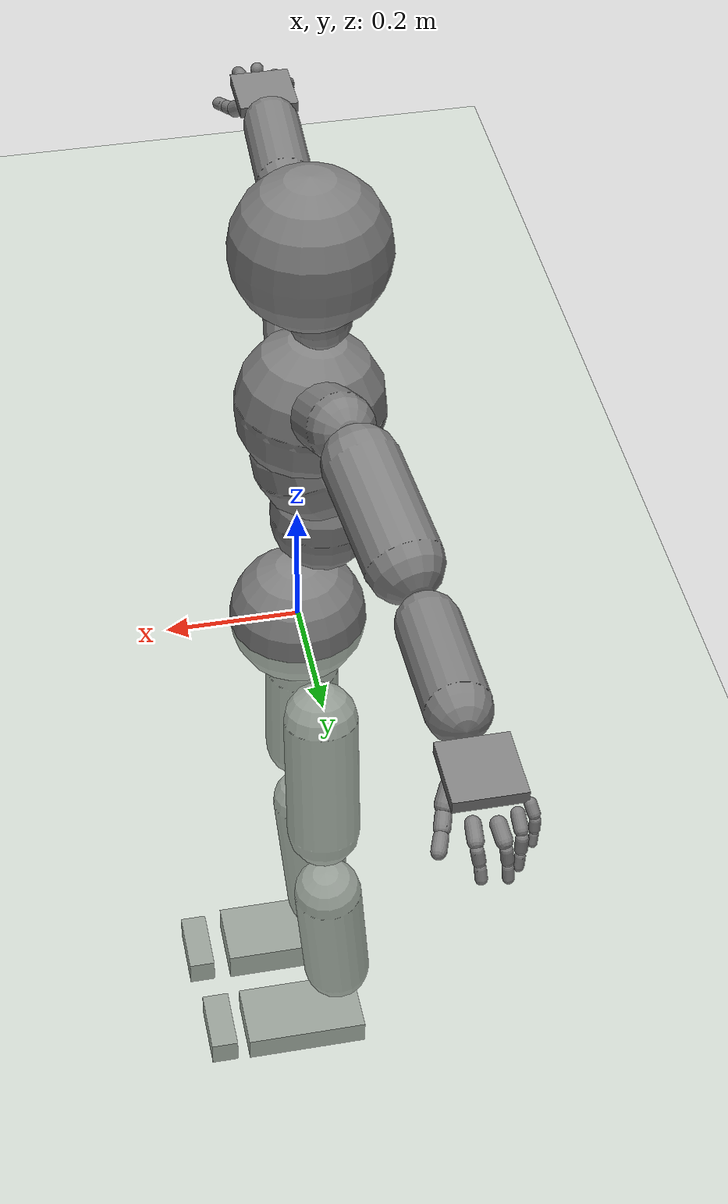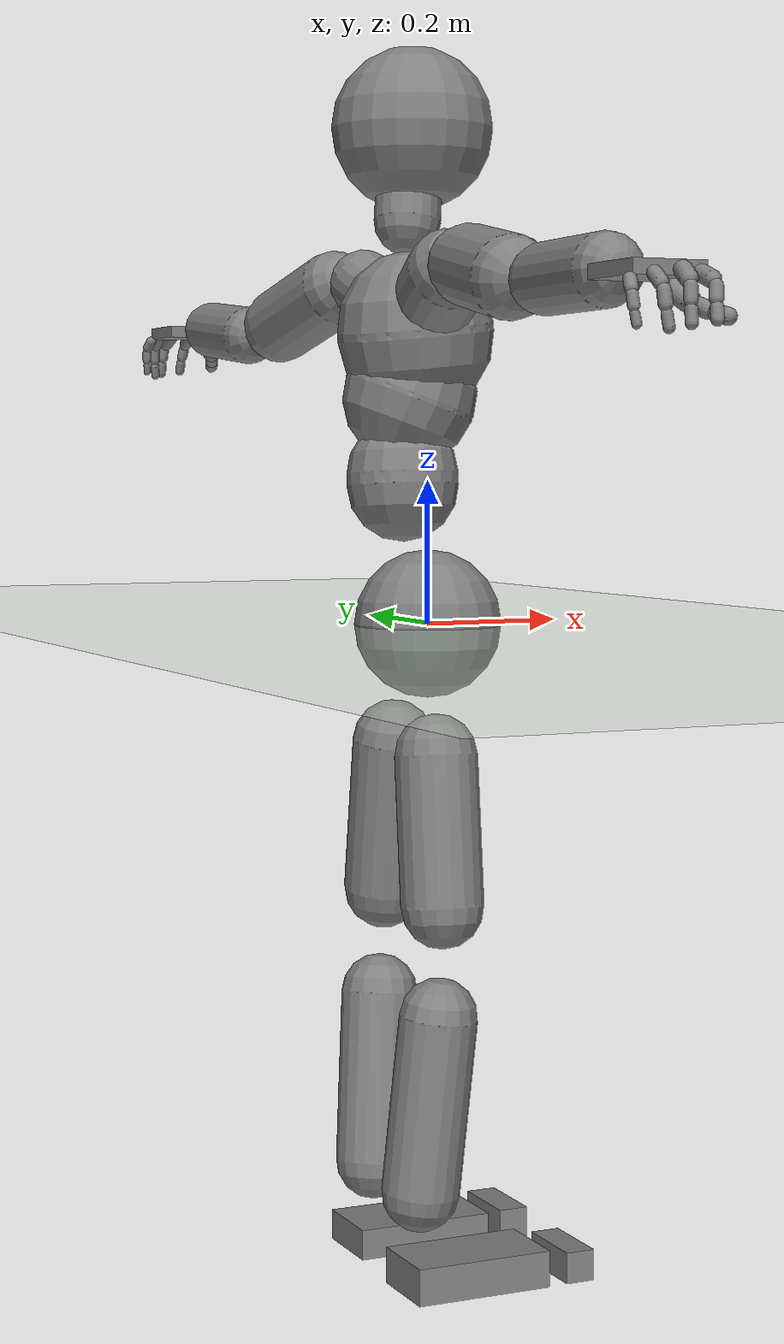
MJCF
<mujoco model="humanoid">
  <compiler coordinate="local" />
  <statistic extent="2" center="0 0 1" />
  <option timestep="0.00555" />
  <default>
    <motor ctrlrange="-1 1" ctrllimited="true" />
    <geom type="capsule" condim="1" friction="1.0 0.05 0.05" solimp=".9 .99 .003" solref=".015 1" />
    <joint type="hinge" damping="0.1" stiffness="5" armature=".007" limited="true" solimplimit="0 .99 .01" />
    <site size=".04" group="3" />
    <default class="force-torque">
      <site type="box" size=".01 .01 .02" rgba="1 0 0 1" />
    </default>
    <default class="touch">
      <site type="capsule" rgba="0 0 1 .3" />
    </default>
  </default>
  <asset>
    <texture type="skybox" builtin="gradient" rgb1=".4 .5 .6" rgb2="0 0 0" width="100" height="100" />
    <texture builtin="flat" height="1278" mark="cross" markrgb="1 1 1" name="texgeom" random="0.01" rgb1="0.8 0.6 0.4" rgb2="0.8 0.6 0.4" type="cube" width="127" />
    <texture builtin="checker" height="100" name="texplane" rgb1="0 0 0" rgb2="0.8 0.8 0.8" type="2d" width="100" />
    <material name="MatPlane" reflectance="0.5" shininess="1" specular="1" texrepeat="60 60" texture="texplane" />
    <material name="geom" texture="texgeom" texuniform="true" />
  </asset>
  <worldbody>
    <light cutoff="100" diffuse="1 1 1" dir="-0 0 -1.3" directional="true" exponent="1" pos="0 0 1.3" specular=".1 .1 .1" />
    <geom conaffinity="1" condim="3" name="floor" pos="0 0 0" rgba="0.8 0.9 0.8 1" size="100 100 .2" type="plane" material="MatPlane" />
    <body name="Pelvis" pos="0 0 0">
      <inertial pos="0.000000 0.000000 0.000000" quat="1.00000000 0.00000000 0.00000000 0.00000000" mass="4.698241" diaginertia="0.020287397 0.020287397 0.020287397" /><freejoint name="Pelvis" />
      <geom type="sphere" contype="1" conaffinity="1" density="1000" size="0.1039" pos="0.0000 0.0000 0.0000" name="Pelvis" />
      <body name="L_Hip" pos="-0.0236 0.0529 -0.0971">
        <inertial pos="0.001800 0.030650 -0.182250" quat="0.98189647 0.08266190 0.00927497 -0.17017730" mass="6.451034" diaginertia="0.054423217 0.054423217 0.010289550" /><joint name="L_Hip_x" type="hinge" pos="0 0 0" axis="1 0 0" stiffness="800" damping="80" armature="0.02" range="-180.0000 180.0000" />
        <joint name="L_Hip_y" type="hinge" pos="0 0 0" axis="0 1 0" stiffness="800" damping="80" armature="0.02" range="-180.0000 180.0000" />
        <joint name="L_Hip_z" type="hinge" pos="0 0 0" axis="0 0 1" stiffness="800" damping="80" armature="0.02" range="-180.0000 180.0000" />
        <geom type="capsule" contype="1" conaffinity="1" density="2040.816327" fromto="0.0007 0.0123 -0.0729 0.0029 0.0490 -0.2916" size="0.058" />
        <body name="L_Knee" pos="0.0037 0.0613 -0.3645">
          <inertial pos="-0.018500 -0.025050 -0.200000" quat="0.99664377 -0.06087389 0.04751182 0.02716985" mass="3.710167" diaginertia="0.034208075 0.034208075 0.005351362" /><joint name="L_Knee_x" type="hinge" pos="0 0 0" axis="1 0 0" stiffness="800" damping="80" armature="0.02" range="-180.0000 180.0000" />
          <joint name="L_Knee_y" type="hinge" pos="0 0 0" axis="0 1 0" stiffness="800" damping="80" armature="0.02" range="-180.0000 180.0000" />
          <joint name="L_Knee_z" type="hinge" pos="0 0 0" axis="0 0 1" stiffness="800" damping="80" armature="0.02" range="-180.0000 180.0000" />
          <geom type="capsule" contype="1" conaffinity="1" density="1234.567901" fromto="-0.0074 -0.0100 -0.0800 -0.0296 -0.0401 -0.3200" size="0.055" />
          <body name="L_Ankle" pos="-0.037 -0.0501 -0.4">
            <inertial pos="0.070900 0.022800 -0.029800" quat="1.00000000 0.00000000 0.00000000 0.00000000" mass="0.957671" diaginertia="0.001121625 0.003366764 0.004190515" /><joint name="L_Ankle_x" type="hinge" pos="0 0 0" axis="1 0 0" stiffness="800" damping="80" armature="0.02" range="-180.0000 180.0000" />
            <joint name="L_Ankle_y" type="hinge" pos="0 0 0" axis="0 1 0" stiffness="800" damping="80" armature="0.02" range="-180.0000 180.0000" />
            <joint name="L_Ankle_z" type="hinge" pos="0 0 0" axis="0 0 1" stiffness="800" damping="80" armature="0.02" range="-180.0000 180.0000" />
            <geom type="box" contype="1" conaffinity="1" density="1000" pos="0.0709 0.0228 -0.0298" size="0.1004 0.0552 0.0216" quat="1.0000 0.0000 0.0000 0.0000" />
            <body name="L_Toe" pos="0.1418 0.0456 -0.0596">
              <inertial pos="0.071900 -0.022800 0.030400" quat="1.00000000 0.00000000 0.00000000 0.00000000" mass="0.206927" diaginertia="0.000228906 0.000067073 0.000228602" /><joint name="L_Toe_x" type="hinge" pos="0 0 0" axis="1 0 0" stiffness="500" damping="50" armature="0.02" range="-180.0000 180.0000" />
              <joint name="L_Toe_y" type="hinge" pos="0 0 0" axis="0 1 0" stiffness="500" damping="50" armature="0.02" range="-180.0000 180.0000" />
              <joint name="L_Toe_z" type="hinge" pos="0 0 0" axis="0 0 1" stiffness="500" damping="50" armature="0.02" range="-180.0000 180.0000" />
              <geom type="box" contype="1" conaffinity="1" density="1000" pos="0.0719 -0.0228 0.0304" size="0.022 0.0532 0.0221" quat="1.0000 0.0000 0.0000 0.0000" />
            </body>
          </body>
        </body>
      </body>
      <body name="R_Hip" pos="-0.0168 -0.0552 -0.1087">
        <inertial pos="-0.002200 -0.022400 -0.173700" quat="0.99793690 -0.06390365 0.00617405 -0.00039536" mass="6.151659" diaginertia="0.048267573 0.048267573 0.009724372" /><joint name="R_Hip_x" type="hinge" pos="0 0 0" axis="1 0 0" stiffness="800" damping="80" armature="0.02" range="-180.0000 180.0000" />
        <joint name="R_Hip_y" type="hinge" pos="0 0 0" axis="0 1 0" stiffness="800" damping="80" armature="0.02" range="-180.0000 180.0000" />
        <joint name="R_Hip_z" type="hinge" pos="0 0 0" axis="0 0 1" stiffness="800" damping="80" armature="0.02" range="-180.0000 180.0000" />
        <geom type="capsule" contype="1" conaffinity="1" density="2040.816327" fromto="-0.0009 -0.0090 -0.0695 -0.0035 -0.0358 -0.2779" size="0.0578" />
        <body name="R_Knee" pos="-0.0043 -0.0448 -0.3474">
          <inertial pos="-0.017600 0.010350 -0.206400" quat="0.99653595 0.02223966 0.04424026 -0.06681539" mass="3.718719" diaginertia="0.035307856 0.035307856 0.005292110" /><joint name="R_Knee_x" type="hinge" pos="0 0 0" axis="1 0 0" stiffness="800" damping="80" armature="0.02" range="-180.0000 180.0000" />
          <joint name="R_Knee_y" type="hinge" pos="0 0 0" axis="0 1 0" stiffness="800" damping="80" armature="0.02" range="-180.0000 180.0000" />
          <joint name="R_Knee_z" type="hinge" pos="0 0 0" axis="0 0 1" stiffness="800" damping="80" armature="0.02" range="-180.0000 180.0000" />
          <geom type="capsule" contype="1" conaffinity="1" density="1234.567901" fromto="-0.0070 0.0041 -0.0826 -0.0282 0.0166 -0.3302" size="0.0546" />
          <body name="R_Ankle" pos="-0.0352 0.0207 -0.4128">
            <inertial pos="0.074300 -0.017700 -0.029300" quat="1.00000000 0.00000000 0.00000000 0.00000000" mass="1.143885" diaginertia="0.001415627 0.004097321 0.005005337" /><joint name="R_Ankle_x" type="hinge" pos="0 0 0" axis="1 0 0" stiffness="800" damping="80" armature="0.02" range="-180.0000 180.0000" />
            <joint name="R_Ankle_y" type="hinge" pos="0 0 0" axis="0 1 0" stiffness="800" damping="80" armature="0.02" range="-180.0000 180.0000" />
            <joint name="R_Ankle_z" type="hinge" pos="0 0 0" axis="0 0 1" stiffness="800" damping="80" armature="0.02" range="-180.0000 180.0000" />
            <geom type="box" contype="1" conaffinity="1" density="1000" pos="0.0743 -0.0177 -0.0293" size="0.1004 0.0552 0.0258" quat="1.0000 0.0000 0.0000 0.0000" />
            <body name="R_Toe" pos="0.1487 -0.0354 -0.0587">
              <inertial pos="0.075300 0.017700 0.025600" quat="1.00000000 0.00000000 0.00000000 0.00000000" mass="0.201283" diaginertia="0.000222663 0.000063496 0.000220620" /><joint name="R_Toe_x" type="hinge" pos="0 0 0" axis="1 0 0" stiffness="500" damping="50" armature="0.02" range="-180.0000 180.0000" />
              <joint name="R_Toe_y" type="hinge" pos="0 0 0" axis="0 1 0" stiffness="500" damping="50" armature="0.02" range="-180.0000 180.0000" />
              <joint name="R_Toe_z" type="hinge" pos="0 0 0" axis="0 0 1" stiffness="500" damping="50" armature="0.02" range="-180.0000 180.0000" />
              <geom type="box" contype="1" conaffinity="1" density="1000" pos="0.0753 0.0177 0.0256" size="0.0214 0.0532 0.0221" quat="1.0000 0.0000 0.0000 0.0000" />
            </body>
          </body>
        </body>
      </body>
      <body name="Torso" pos="-0.0378 -0.0024 0.1175">
        <inertial pos="0.000450 0.006050 0.083900" quat="0.99925019 -0.03860376 0.00296507 -0.00011455" mass="2.841246" diaginertia="0.007922013 0.007922013 0.007137412" /><joint name="Torso_x" type="hinge" pos="0 0 0" axis="1 0 0" stiffness="1000" damping="100" armature="0.02" range="-180.0000 180.0000" />
        <joint name="Torso_y" type="hinge" pos="0 0 0" axis="0 1 0" stiffness="1000" damping="100" armature="0.02" range="-180.0000 180.0000" />
        <joint name="Torso_z" type="hinge" pos="0 0 0" axis="0 0 1" stiffness="1000" damping="100" armature="0.02" range="-180.0000 180.0000" />
        <geom type="capsule" contype="1" conaffinity="1" density="1234.567901" fromto="0.0004 0.0054 0.0755 0.0005 0.0067 0.0923" size="0.0779" />
        <body name="Spine" pos="0.0009 0.0121 0.1679">
          <inertial pos="0.011100 -0.004950 0.031650" quat="0.97951582 0.05220569 0.17165153 -0.09142796" mass="4.371596" diaginertia="0.015820141 0.015820141 0.015285988" /><joint name="Spine_x" type="hinge" pos="0 0 0" axis="1 0 0" stiffness="1000" damping="100" armature="0.02" range="-180.0000 180.0000" />
          <joint name="Spine_y" type="hinge" pos="0 0 0" axis="0 1 0" stiffness="1000" damping="100" armature="0.02" range="-180.0000 180.0000" />
          <joint name="Spine_z" type="hinge" pos="0 0 0" axis="0 0 1" stiffness="1000" damping="100" armature="0.02" range="-180.0000 180.0000" />
          <geom type="capsule" contype="1" conaffinity="1" density="1234.567901" fromto="0.0100 -0.0045 0.0285 0.0122 -0.0054 0.0348" size="0.0929" />
          <body name="Chest" pos="0.0223 -0.0099 0.0632">
            <inertial pos="-0.006000 -0.002200 0.056000" quat="0.99554623 0.01367926 -0.05451118 0.07569094" mass="7.139163" diaginertia="0.036023672 0.036023672 0.034287671" /><joint name="Chest_x" type="hinge" pos="0 0 0" axis="1 0 0" stiffness="1000" damping="100" armature="0.02" range="-180.0000 180.0000" />
            <joint name="Chest_y" type="hinge" pos="0 0 0" axis="0 1 0" stiffness="1000" damping="100" armature="0.02" range="-180.0000 180.0000" />
            <joint name="Chest_z" type="hinge" pos="0 0 0" axis="0 0 1" stiffness="1000" damping="100" armature="0.02" range="-180.0000 180.0000" />
            <geom type="capsule" contype="1" conaffinity="1" density="1234.567901" fromto="-0.0054 -0.0020 0.0504 -0.0066 -0.0024 0.0616" size="0.1086" />
            <body name="Neck" pos="-0.024 -0.0093 0.1747">
              <inertial pos="0.010200 0.011900 0.080550" quat="0.99542191 -0.07269701 0.06188650 -0.00451965" mass="1.073527" diaginertia="0.002945723 0.002945723 0.001057524" /><joint name="Neck_x" type="hinge" pos="0 0 0" axis="1 0 0" stiffness="500" damping="50" armature="0.02" range="-180.0000 180.0000" />
              <joint name="Neck_y" type="hinge" pos="0 0 0" axis="0 1 0" stiffness="500" damping="50" armature="0.02" range="-180.0000 180.0000" />
              <joint name="Neck_z" type="hinge" pos="0 0 0" axis="0 0 1" stiffness="500" damping="50" armature="0.02" range="-180.0000 180.0000" />
              <geom type="capsule" contype="1" conaffinity="1" density="1000" fromto="0.0041 0.0048 0.0322 0.0163 0.0190 0.1289" size="0.0462" />
              <body name="Head" pos="0.0204 0.0238 0.1612">
                <inertial pos="0.000000 0.000000 0.000000" quat="1.00000000 0.00000000 0.00000000 0.00000000" mass="5.948227" diaginertia="0.030059390 0.030059390 0.030059390" /><joint name="Head_x" type="hinge" pos="0 0 0" axis="1 0 0" stiffness="500" damping="50" armature="0.02" range="-180.0000 180.0000" />
                <joint name="Head_y" type="hinge" pos="0 0 0" axis="0 1 0" stiffness="500" damping="50" armature="0.02" range="-180.0000 180.0000" />
                <joint name="Head_z" type="hinge" pos="0 0 0" axis="0 0 1" stiffness="500" damping="50" armature="0.02" range="-180.0000 180.0000" />
                <geom type="sphere" contype="1" conaffinity="1" density="1000" size="0.1124" pos="0.0000 0.0000 0.0000" name="Head" />
              </body>
            </body>
            <body name="L_Thorax" pos="-0.0042 0.0393 0.08">
              <inertial pos="-0.009950 0.064550 0.032150" quat="0.97119904 0.22539761 0.01968519 0.07470495" mass="1.140311" diaginertia="0.002975051 0.001241864 0.002975051" /><joint name="L_Thorax_x" type="hinge" pos="0 0 0" axis="1 0 0" stiffness="500" damping="50" armature="0.02" range="-180.0000 180.0000" />
              <joint name="L_Thorax_y" type="hinge" pos="0 0 0" axis="0 1 0" stiffness="500" damping="50" armature="0.02" range="-180.0000 180.0000" />
              <joint name="L_Thorax_z" type="hinge" pos="0 0 0" axis="0 0 1" stiffness="500" damping="50" armature="0.02" range="-180.0000 180.0000" />
              <geom type="capsule" contype="1" conaffinity="1" density="1000" fromto="-0.0040 0.0258 0.0129 -0.0159 0.1033 0.0514" size="0.0488" />
              <body name="L_Shoulder" pos="-0.0199 0.1291 0.0643">
                <inertial pos="-0.021950 0.123550 -0.039050" quat="0.94409521 -0.12056346 -0.28060653 0.12413166" mass="2.196032" diaginertia="0.011688608 0.003110683 0.011688608" /><joint name="L_Shoulder_x" type="hinge" pos="0 0 0" axis="1 0 0" stiffness="500" damping="50" armature="0.02" range="-180.0000 180.0000" />
                <joint name="L_Shoulder_y" type="hinge" pos="0 0 0" axis="0 1 0" stiffness="500" damping="50" armature="0.02" range="-180.0000 180.0000" />
                <joint name="L_Shoulder_z" type="hinge" pos="0 0 0" axis="0 0 1" stiffness="500" damping="50" armature="0.02" range="-180.0000 180.0000" />
                <geom type="capsule" contype="1" conaffinity="1" density="1000" fromto="-0.0088 0.0494 -0.0156 -0.0351 0.1977 -0.0625" size="0.055" />
                <body name="L_Elbow" pos="-0.0438 0.2472 -0.0781">
                  <inertial pos="0.000000 0.137500 0.013450" quat="0.99881760 0.04861475 0.00000000 0.00000000" mass="1.344183" diaginertia="0.006371501 0.001216729 0.006371501" /><joint name="L_Elbow_x" type="hinge" pos="0 0 0" axis="1 0 0" stiffness="500" damping="50" armature="0.02" range="-180.0000 180.0000" />
                  <joint name="L_Elbow_y" type="hinge" pos="0 0 0" axis="0 1 0" stiffness="500" damping="50" armature="0.02" range="-180.0000 180.0000" />
                  <joint name="L_Elbow_z" type="hinge" pos="0 0 0" axis="0 0 1" stiffness="500" damping="50" armature="0.02" range="-180.0000 180.0000" />
                  <geom type="capsule" contype="1" conaffinity="1" density="1000" fromto="-0.0000 0.0550 0.0054 -0.0000 0.2200 0.0215" size="0.0437" />
                  <body name="L_Wrist" pos="0 0.275 0.0269">
                    <inertial pos="-0.003100 0.048300 -0.005900" quat="1.00000000 0.00000000 0.00000000 0.00000000" mass="0.160616" diaginertia="0.000133124 0.000122319 0.000247338" /><joint name="L_Wrist_x" type="hinge" pos="0 0 0" axis="1 0 0" stiffness="300" damping="30" armature="0.02" range="-180.0000 180.0000" />
                    <joint name="L_Wrist_y" type="hinge" pos="0 0 0" axis="0 1 0" stiffness="300" damping="30" armature="0.02" range="-180.0000 180.0000" />
                    <joint name="L_Wrist_z" type="hinge" pos="0 0 0" axis="0 0 1" stiffness="300" damping="30" armature="0.02" range="-180.0000 180.0000" />
                    <geom type="box" contype="1" conaffinity="1" density="1000" pos="-0.0031 0.0483 -0.0059" size="0.047 0.0491 0.0087" quat="1.0000 0.0000 0.0000 0.0000" />
                    <body name="L_Index1" pos="0.0235 0.1137 -0.0089">
                      <inertial pos="0.000950 0.016600 -0.006450" quat="0.98118998 -0.18374714 -0.05714392 -0.01541998" mass="0.011729" diaginertia="0.000001565 0.000000574 0.000001565" /><joint name="L_Index1_x" type="hinge" pos="0 0 0" axis="1 0 0" stiffness="100" damping="10" armature="0.02" range="-180.0000 180.0000" />
                      <joint name="L_Index1_y" type="hinge" pos="0 0 0" axis="0 1 0" stiffness="100" damping="10" armature="0.02" range="-180.0000 180.0000" />
                      <joint name="L_Index1_z" type="hinge" pos="0 0 0" axis="0 0 1" stiffness="100" damping="10" armature="0.02" range="-180.0000 180.0000" />
                      <geom type="capsule" contype="1" conaffinity="1" density="1000" fromto="0.0004 0.0066 -0.0026 0.0015 0.0266 -0.0103" size="0.0103" />
                      <body name="L_Index2" pos="0.0019 0.0332 -0.0129">
                        <inertial pos="-0.001600 0.003500 -0.011950" quat="0.98721401 0.13930504 0.07155355 -0.02971022" mass="0.005486" diaginertia="0.000000413 0.000000413 0.000000169" /><joint name="L_Index2_x" type="hinge" pos="0 0 0" axis="1 0 0" stiffness="100" damping="10" armature="0.02" range="-180.0000 180.0000" />
                        <joint name="L_Index2_y" type="hinge" pos="0 0 0" axis="0 1 0" stiffness="100" damping="10" armature="0.02" range="-180.0000 180.0000" />
                        <joint name="L_Index2_z" type="hinge" pos="0 0 0" axis="0 0 1" stiffness="100" damping="10" armature="0.02" range="-180.0000 180.0000" />
                        <geom type="capsule" contype="1" conaffinity="1" density="1000" fromto="-0.0006 0.0014 -0.0048 -0.0026 0.0056 -0.0191" size="0.0082" />
                        <body name="L_Index3" pos="-0.0032 0.007 -0.0238">
                          <inertial pos="-0.000600 0.004500 -0.010950" quat="0.98056152 0.19417535 0.02765921 0.00547720" mass="0.004275" diaginertia="0.000000277 0.000000277 0.000000110" /><joint name="L_Index3_x" type="hinge" pos="0 0 0" axis="1 0 0" stiffness="100" damping="10" armature="0.02" range="-180.0000 180.0000" />
                          <joint name="L_Index3_y" type="hinge" pos="0 0 0" axis="0 1 0" stiffness="100" damping="10" armature="0.02" range="-180.0000 180.0000" />
                          <joint name="L_Index3_z" type="hinge" pos="0 0 0" axis="0 0 1" stiffness="100" damping="10" armature="0.02" range="-180.0000 180.0000" />
                          <geom type="capsule" contype="1" conaffinity="1" density="1000" fromto="-0.0002 0.0018 -0.0044 -0.0010 0.0072 -0.0175" size="0.0075" />
                        </body>
                      </body>
                    </body>
                    <body name="L_Middle1" pos="-0.0035 0.1224 -0.0057">
                      <inertial pos="-0.002650 0.014500 -0.008550" quat="0.95803293 -0.25358560 -0.08642840 0.10196757" mass="0.012210" diaginertia="0.000001606 0.000000630 0.000001606" /><joint name="L_Middle1_x" type="hinge" pos="0 0 0" axis="1 0 0" stiffness="100" damping="10" armature="0.02" range="-180.0000 180.0000" />
                      <joint name="L_Middle1_y" type="hinge" pos="0 0 0" axis="0 1 0" stiffness="100" damping="10" armature="0.02" range="-180.0000 180.0000" />
                      <joint name="L_Middle1_z" type="hinge" pos="0 0 0" axis="0 0 1" stiffness="100" damping="10" armature="0.02" range="-180.0000 180.0000" />
                      <geom type="capsule" contype="1" conaffinity="1" density="1000" fromto="-0.0011 0.0058 -0.0034 -0.0042 0.0232 -0.0137" size="0.0106" />
                      <body name="L_Middle2" pos="-0.0053 0.029 -0.0171">
                        <inertial pos="-0.001100 0.002500 -0.012950" quat="0.98948151 0.09024560 0.05370825 -0.09948613" mass="0.005331" diaginertia="0.000000409 0.000000409 0.000000157" /><joint name="L_Middle2_x" type="hinge" pos="0 0 0" axis="1 0 0" stiffness="100" damping="10" armature="0.02" range="-180.0000 180.0000" />
                        <joint name="L_Middle2_y" type="hinge" pos="0 0 0" axis="0 1 0" stiffness="100" damping="10" armature="0.02" range="-180.0000 180.0000" />
                        <joint name="L_Middle2_z" type="hinge" pos="0 0 0" axis="0 0 1" stiffness="100" damping="10" armature="0.02" range="-180.0000 180.0000" />
                        <geom type="capsule" contype="1" conaffinity="1" density="1000" fromto="-0.0004 0.0010 -0.0052 -0.0018 0.0040 -0.0207" size="0.008" />
                        <body name="L_Middle3" pos="-0.0022 0.0049 -0.0259">
                          <inertial pos="-0.000100 0.003500 -0.011950" quat="0.98978901 0.14231837 0.00724790 -0.00326663" mass="0.004125" diaginertia="0.000000271 0.000000271 0.000000101" /><joint name="L_Middle3_x" type="hinge" pos="0 0 0" axis="1 0 0" stiffness="100" damping="10" armature="0.02" range="-180.0000 180.0000" />
                          <joint name="L_Middle3_y" type="hinge" pos="0 0 0" axis="0 1 0" stiffness="100" damping="10" armature="0.02" range="-180.0000 180.0000" />
                          <joint name="L_Middle3_z" type="hinge" pos="0 0 0" axis="0 0 1" stiffness="100" damping="10" armature="0.02" range="-180.0000 180.0000" />
                          <geom type="capsule" contype="1" conaffinity="1" density="1000" fromto="-0.0000 0.0014 -0.0048 -0.0002 0.0056 -0.0191" size="0.0073" />
                        </body>
                      </body>
                    </body>
                    <body name="L_Pinky1" pos="-0.0504 0.0936 -0.0148">
                      <inertial pos="-0.002450 0.006800 -0.008350" quat="0.90670210 0.28784982 0.19561942 -0.23825791" mass="0.004679" diaginertia="0.000000304 0.000000304 0.000000133" /><joint name="L_Pinky1_x" type="hinge" pos="0 0 0" axis="1 0 0" stiffness="100" damping="10" armature="0.02" range="-180.0000 180.0000" />
                      <joint name="L_Pinky1_y" type="hinge" pos="0 0 0" axis="0 1 0" stiffness="100" damping="10" armature="0.02" range="-180.0000 180.0000" />
                      <joint name="L_Pinky1_z" type="hinge" pos="0 0 0" axis="0 0 1" stiffness="100" damping="10" armature="0.02" range="-180.0000 180.0000" />
                      <geom type="capsule" contype="1" conaffinity="1" density="1000" fromto="-0.0010 0.0027 -0.0033 -0.0039 0.0109 -0.0134" size="0.0079" />
                      <body name="L_Pinky2" pos="-0.0049 0.0136 -0.0167">
                        <inertial pos="0.000500 0.002000 -0.010450" quat="0.99505601 0.09416312 -0.02543099 0.01871124" mass="0.003398" diaginertia="0.000000185 0.000000185 0.000000076" /><joint name="L_Pinky2_x" type="hinge" pos="0 0 0" axis="1 0 0" stiffness="100" damping="10" armature="0.02" range="-180.0000 180.0000" />
                        <joint name="L_Pinky2_y" type="hinge" pos="0 0 0" axis="0 1 0" stiffness="100" damping="10" armature="0.02" range="-180.0000 180.0000" />
                        <joint name="L_Pinky2_z" type="hinge" pos="0 0 0" axis="0 0 1" stiffness="100" damping="10" armature="0.02" range="-180.0000 180.0000" />
                        <geom type="capsule" contype="1" conaffinity="1" density="1000" fromto="0.0002 0.0008 -0.0042 0.0008 0.0032 -0.0167" size="0.007" />
                        <body name="L_Pinky3" pos="0.001 0.0039 -0.0209">
                          <inertial pos="0.001500 0.003000 -0.009450" quat="0.98533228 0.15316313 -0.07434908 -0.01155705" mass="0.001917" diaginertia="0.000000078 0.000000078 0.000000028" /><joint name="L_Pinky3_x" type="hinge" pos="0 0 0" axis="1 0 0" stiffness="100" damping="10" armature="0.02" range="-180.0000 180.0000" />
                          <joint name="L_Pinky3_y" type="hinge" pos="0 0 0" axis="0 1 0" stiffness="100" damping="10" armature="0.02" range="-180.0000 180.0000" />
                          <joint name="L_Pinky3_z" type="hinge" pos="0 0 0" axis="0 0 1" stiffness="100" damping="10" armature="0.02" range="-180.0000 180.0000" />
                          <geom type="capsule" contype="1" conaffinity="1" density="1000" fromto="0.0006 0.0012 -0.0038 0.0024 0.0048 -0.0151" size="0.0056" />
                        </body>
                      </body>
                    </body>
                    <body name="L_Ring1" pos="-0.0311 0.1088 -0.0086">
                      <inertial pos="-0.000750 0.012950 -0.009250" quat="0.95027268 -0.30354576 -0.05515106 0.04242839" mass="0.007702" diaginertia="0.000000789 0.000000282 0.000000789" /><joint name="L_Ring1_x" type="hinge" pos="0 0 0" axis="1 0 0" stiffness="100" damping="10" armature="0.02" range="-180.0000 180.0000" />
                      <joint name="L_Ring1_y" type="hinge" pos="0 0 0" axis="0 1 0" stiffness="100" damping="10" armature="0.02" range="-180.0000 180.0000" />
                      <joint name="L_Ring1_z" type="hinge" pos="0 0 0" axis="0 0 1" stiffness="100" damping="10" armature="0.02" range="-180.0000 180.0000" />
                      <geom type="capsule" contype="1" conaffinity="1" density="1000" fromto="-0.0003 0.0052 -0.0037 -0.0012 0.0207 -0.0148" size="0.0089" />
                      <body name="L_Ring2" pos="-0.0015 0.0259 -0.0184">
                        <inertial pos="0.000800 0.002000 -0.012950" quat="0.99654641 0.07669501 -0.03173588 -0.00244242" mass="0.005466" diaginertia="0.000000422 0.000000422 0.000000165" /><joint name="L_Ring2_x" type="hinge" pos="0 0 0" axis="1 0 0" stiffness="100" damping="10" armature="0.02" range="-180.0000 180.0000" />
                        <joint name="L_Ring2_y" type="hinge" pos="0 0 0" axis="0 1 0" stiffness="100" damping="10" armature="0.02" range="-180.0000 180.0000" />
                        <joint name="L_Ring2_z" type="hinge" pos="0 0 0" axis="0 0 1" stiffness="100" damping="10" armature="0.02" range="-180.0000 180.0000" />
                        <geom type="capsule" contype="1" conaffinity="1" density="1000" fromto="0.0003 0.0008 -0.0052 0.0013 0.0032 -0.0207" size="0.0081" />
                        <body name="L_Ring3" pos="0.0016 0.004 -0.0259">
                          <inertial pos="0.001800 0.003000 -0.011950" quat="0.98968715 0.12266236 -0.07341997 -0.00909971" mass="0.003362" diaginertia="0.000000202 0.000000202 0.000000070" /><joint name="L_Ring3_x" type="hinge" pos="0 0 0" axis="1 0 0" stiffness="100" damping="10" armature="0.02" range="-180.0000 180.0000" />
                          <joint name="L_Ring3_y" type="hinge" pos="0 0 0" axis="0 1 0" stiffness="100" damping="10" armature="0.02" range="-180.0000 180.0000" />
                          <joint name="L_Ring3_z" type="hinge" pos="0 0 0" axis="0 0 1" stiffness="100" damping="10" armature="0.02" range="-180.0000 180.0000" />
                          <geom type="capsule" contype="1" conaffinity="1" density="1000" fromto="0.0007 0.0012 -0.0048 0.0029 0.0048 -0.0191" size="0.0067" />
                        </body>
                      </body>
                    </body>
                    <body name="L_Thumb1" pos="0.0307 0.0445 -0.0209">
                      <inertial pos="0.007300 0.011950 -0.010200" quat="0.91588921 -0.33760834 -0.07511499 -0.20377756" mass="0.023848" diaginertia="0.000004359 0.000002086 0.000004359" /><joint name="L_Thumb1_x" type="hinge" pos="0 0 0" axis="1 0 0" stiffness="100" damping="10" armature="0.02" range="-180.0000 180.0000" />
                      <joint name="L_Thumb1_y" type="hinge" pos="0 0 0" axis="0 1 0" stiffness="100" damping="10" armature="0.02" range="-180.0000 180.0000" />
                      <joint name="L_Thumb1_z" type="hinge" pos="0 0 0" axis="0 0 1" stiffness="100" damping="10" armature="0.02" range="-180.0000 180.0000" />
                      <geom type="capsule" contype="1" conaffinity="1" density="1000" fromto="0.0029 0.0048 -0.0041 0.0117 0.0191 -0.0163" size="0.0139" />
                      <body name="L_Thumb2" pos="0.0146 0.0239 -0.0203">
                        <inertial pos="0.004250 0.013100 -0.004750" quat="0.97437267 -0.17038288 -0.02529655 -0.14466398" mass="0.011185" diaginertia="0.000001290 0.000000572 0.000001290" /><joint name="L_Thumb2_x" type="hinge" pos="0 0 0" axis="1 0 0" stiffness="100" damping="10" armature="0.02" range="-180.0000 180.0000" />
                        <joint name="L_Thumb2_y" type="hinge" pos="0 0 0" axis="0 1 0" stiffness="100" damping="10" armature="0.02" range="-180.0000 180.0000" />
                        <joint name="L_Thumb2_z" type="hinge" pos="0 0 0" axis="0 0 1" stiffness="100" damping="10" armature="0.02" range="-180.0000 180.0000" />
                        <geom type="capsule" contype="1" conaffinity="1" density="1000" fromto="0.0017 0.0052 -0.0019 0.0068 0.0210 -0.0076" size="0.0106" />
                        <body name="L_Thumb3" pos="0.0085 0.0262 -0.0095">
                          <inertial pos="0.005250 0.014100 -0.003750" quat="0.97700871 -0.12712086 -0.02208332 -0.16972508" mass="0.009579" diaginertia="0.000001065 0.000000422 0.000001065" /><joint name="L_Thumb3_x" type="hinge" pos="0 0 0" axis="1 0 0" stiffness="100" damping="10" armature="0.02" range="-180.0000 180.0000" />
                          <joint name="L_Thumb3_y" type="hinge" pos="0 0 0" axis="0 1 0" stiffness="100" damping="10" armature="0.02" range="-180.0000 180.0000" />
                          <joint name="L_Thumb3_z" type="hinge" pos="0 0 0" axis="0 0 1" stiffness="100" damping="10" armature="0.02" range="-180.0000 180.0000" />
                          <geom type="capsule" contype="1" conaffinity="1" density="1000" fromto="0.0021 0.0056 -0.0015 0.0084 0.0226 -0.0060" size="0.0098" />
                        </body>
                      </body>
                    </body>
                  </body>
                </body>
              </body>
            </body>
            <body name="R_Thorax" pos="-0.008 -0.043 0.081">
              <inertial pos="-0.007500 -0.059950 0.030500" quat="0.97091509 -0.23289832 -0.01295004 -0.05398662" mass="1.660886" diaginertia="0.005016317 0.002504150 0.005016317" /><joint name="R_Thorax_x" type="hinge" pos="0 0 0" axis="1 0 0" stiffness="500" damping="50" armature="0.02" range="-180.0000 180.0000" />
              <joint name="R_Thorax_y" type="hinge" pos="0 0 0" axis="0 1 0" stiffness="500" damping="50" armature="0.02" range="-180.0000 180.0000" />
              <joint name="R_Thorax_z" type="hinge" pos="0 0 0" axis="0 0 1" stiffness="500" damping="50" armature="0.02" range="-180.0000 180.0000" />
              <geom type="capsule" contype="1" conaffinity="1" density="1000" fromto="-0.0030 -0.0240 0.0122 -0.0120 -0.0959 0.0488" size="0.0578" />
              <body name="R_Shoulder" pos="-0.015 -0.1199 0.0609">
                <inertial pos="-0.016250 -0.131950 -0.022550" quat="0.99459098 0.08451919 0.00511228 -0.06015945" mass="2.169221" diaginertia="0.011761713 0.003000226 0.011761713" /><joint name="R_Shoulder_x" type="hinge" pos="0 0 0" axis="1 0 0" stiffness="500" damping="50" armature="0.02" range="-180.0000 180.0000" />
                <joint name="R_Shoulder_y" type="hinge" pos="0 0 0" axis="0 1 0" stiffness="500" damping="50" armature="0.02" range="-180.0000 180.0000" />
                <joint name="R_Shoulder_z" type="hinge" pos="0 0 0" axis="0 0 1" stiffness="500" damping="50" armature="0.02" range="-180.0000 180.0000" />
                <geom type="capsule" contype="1" conaffinity="1" density="1000" fromto="-0.0065 -0.0528 -0.0090 -0.0260 -0.2111 -0.0361" size="0.0543" />
                <body name="R_Elbow" pos="-0.0325 -0.2639 -0.0451">
                  <inertial pos="-0.005600 -0.133300 -0.000050" quat="0.99977445 0.00031243 0.00000664 -0.02123562" mass="1.379377" diaginertia="0.006352572 0.001303307 0.006352572" /><joint name="R_Elbow_x" type="hinge" pos="0 0 0" axis="1 0 0" stiffness="500" damping="50" armature="0.02" range="-180.0000 180.0000" />
                  <joint name="R_Elbow_y" type="hinge" pos="0 0 0" axis="0 1 0" stiffness="500" damping="50" armature="0.02" range="-180.0000 180.0000" />
                  <joint name="R_Elbow_z" type="hinge" pos="0 0 0" axis="0 0 1" stiffness="500" damping="50" armature="0.02" range="-180.0000 180.0000" />
                  <geom type="capsule" contype="1" conaffinity="1" density="1000" fromto="-0.0022 -0.0533 -0.0000 -0.0090 -0.2133 -0.0001" size="0.0447" />
                  <body name="R_Wrist" pos="-0.0112 -0.2667 -0.0001">
                    <inertial pos="-0.003700 -0.048000 -0.007700" quat="1.00000000 0.00000000 0.00000000 0.00000000" mass="0.167094" diaginertia="0.000146357 0.000127350 0.000265081" /><joint name="R_Wrist_x" type="hinge" pos="0 0 0" axis="1 0 0" stiffness="300" damping="30" armature="0.02" range="-180.0000 180.0000" />
                    <joint name="R_Wrist_y" type="hinge" pos="0 0 0" axis="0 1 0" stiffness="300" damping="30" armature="0.02" range="-180.0000 180.0000" />
                    <joint name="R_Wrist_z" type="hinge" pos="0 0 0" axis="0 0 1" stiffness="300" damping="30" armature="0.02" range="-180.0000 180.0000" />
                    <geom type="box" contype="1" conaffinity="1" density="1000" pos="-0.0037 -0.0480 -0.0077" size="0.047 0.0505 0.0088" quat="1.0000 0.0000 0.0000 0.0000" />
                    <body name="R_Index1" pos="0.0223 -0.1131 -0.0126">
                      <inertial pos="0.000950 -0.016600 -0.006450" quat="0.98118998 0.18374714 -0.05714392 0.01541998" mass="0.011729" diaginertia="0.000001565 0.000000574 0.000001565" /><joint name="R_Index1_x" type="hinge" pos="0 0 0" axis="1 0 0" stiffness="100" damping="10" armature="0.02" range="-180.0000 180.0000" />
                      <joint name="R_Index1_y" type="hinge" pos="0 0 0" axis="0 1 0" stiffness="100" damping="10" armature="0.02" range="-180.0000 180.0000" />
                      <joint name="R_Index1_z" type="hinge" pos="0 0 0" axis="0 0 1" stiffness="100" damping="10" armature="0.02" range="-180.0000 180.0000" />
                      <geom type="capsule" contype="1" conaffinity="1" density="1000" fromto="0.0004 -0.0066 -0.0026 0.0015 -0.0266 -0.0103" size="0.0103" />
                      <body name="R_Index2" pos="0.0019 -0.0332 -0.0129">
                        <inertial pos="-0.001600 -0.003500 -0.011950" quat="0.98721401 -0.13930504 0.07155355 0.02971022" mass="0.005486" diaginertia="0.000000413 0.000000413 0.000000169" /><joint name="R_Index2_x" type="hinge" pos="0 0 0" axis="1 0 0" stiffness="100" damping="10" armature="0.02" range="-180.0000 180.0000" />
                        <joint name="R_Index2_y" type="hinge" pos="0 0 0" axis="0 1 0" stiffness="100" damping="10" armature="0.02" range="-180.0000 180.0000" />
                        <joint name="R_Index2_z" type="hinge" pos="0 0 0" axis="0 0 1" stiffness="100" damping="10" armature="0.02" range="-180.0000 180.0000" />
                        <geom type="capsule" contype="1" conaffinity="1" density="1000" fromto="-0.0006 -0.0014 -0.0048 -0.0026 -0.0056 -0.0191" size="0.0082" />
                        <body name="R_Index3" pos="-0.0032 -0.007 -0.0238">
                          <inertial pos="-0.000600 -0.002500 -0.010950" quat="0.99314835 -0.11176362 0.03141826 0.01334723" mass="0.004282" diaginertia="0.000000269 0.000000269 0.000000113" /><joint name="R_Index3_x" type="hinge" pos="0 0 0" axis="1 0 0" stiffness="100" damping="10" armature="0.02" range="-180.0000 180.0000" />
                          <joint name="R_Index3_y" type="hinge" pos="0 0 0" axis="0 1 0" stiffness="100" damping="10" armature="0.02" range="-180.0000 180.0000" />
                          <joint name="R_Index3_z" type="hinge" pos="0 0 0" axis="0 0 1" stiffness="100" damping="10" armature="0.02" range="-180.0000 180.0000" />
                          <geom type="capsule" contype="1" conaffinity="1" density="1000" fromto="-0.0002 -0.0010 -0.0044 -0.0010 -0.0040 -0.0175" size="0.0076" />
                        </body>
                      </body>
                    </body>
                    <body name="R_Middle1" pos="-0.0047 -0.1217 -0.0094">
                      <inertial pos="-0.002650 -0.014500 -0.008550" quat="0.95803293 0.25358560 -0.08642840 -0.10196757" mass="0.012210" diaginertia="0.000001606 0.000000630 0.000001606" /><joint name="R_Middle1_x" type="hinge" pos="0 0 0" axis="1 0 0" stiffness="100" damping="10" armature="0.02" range="-180.0000 180.0000" />
                      <joint name="R_Middle1_y" type="hinge" pos="0 0 0" axis="0 1 0" stiffness="100" damping="10" armature="0.02" range="-180.0000 180.0000" />
                      <joint name="R_Middle1_z" type="hinge" pos="0 0 0" axis="0 0 1" stiffness="100" damping="10" armature="0.02" range="-180.0000 180.0000" />
                      <geom type="capsule" contype="1" conaffinity="1" density="1000" fromto="-0.0011 -0.0058 -0.0034 -0.0042 -0.0232 -0.0137" size="0.0106" />
                      <body name="R_Middle2" pos="-0.0053 -0.029 -0.0171">
                        <inertial pos="-0.001100 -0.002450 -0.012950" quat="0.98927076 -0.08690406 0.05386379 0.10435393" mass="0.005328" diaginertia="0.000000409 0.000000409 0.000000157" /><joint name="R_Middle2_x" type="hinge" pos="0 0 0" axis="1 0 0" stiffness="100" damping="10" armature="0.02" range="-180.0000 180.0000" />
                        <joint name="R_Middle2_y" type="hinge" pos="0 0 0" axis="0 1 0" stiffness="100" damping="10" armature="0.02" range="-180.0000 180.0000" />
                        <joint name="R_Middle2_z" type="hinge" pos="0 0 0" axis="0 0 1" stiffness="100" damping="10" armature="0.02" range="-180.0000 180.0000" />
                        <geom type="capsule" contype="1" conaffinity="1" density="1000" fromto="-0.0004 -0.0010 -0.0052 -0.0018 -0.0039 -0.0207" size="0.008" />
                        <body name="R_Middle3" pos="-0.0022 -0.0049 -0.0259">
                          <inertial pos="-0.000100 -0.001450 -0.011950" quat="0.99822632 -0.05912696 0.00693146 -0.00041056" mass="0.004175" diaginertia="0.000000270 0.000000270 0.000000105" /><joint name="R_Middle3_x" type="hinge" pos="0 0 0" axis="1 0 0" stiffness="100" damping="10" armature="0.02" range="-180.0000 180.0000" />
                          <joint name="R_Middle3_y" type="hinge" pos="0 0 0" axis="0 1 0" stiffness="100" damping="10" armature="0.02" range="-180.0000 180.0000" />
                          <joint name="R_Middle3_z" type="hinge" pos="0 0 0" axis="0 0 1" stiffness="100" damping="10" armature="0.02" range="-180.0000 180.0000" />
                          <geom type="capsule" contype="1" conaffinity="1" density="1000" fromto="-0.0000 -0.0006 -0.0048 -0.0002 -0.0023 -0.0191" size="0.0074" />
                        </body>
                      </body>
                    </body>
                    <body name="R_Pinky1" pos="-0.0516 -0.0929 -0.0186">
                      <inertial pos="-0.002450 -0.006800 -0.008300" quat="0.93589042 -0.33465279 0.10364856 -0.03706233" mass="0.004664" diaginertia="0.000000302 0.000000302 0.000000133" /><joint name="R_Pinky1_x" type="hinge" pos="0 0 0" axis="1 0 0" stiffness="100" damping="10" armature="0.02" range="-180.0000 180.0000" />
                      <joint name="R_Pinky1_y" type="hinge" pos="0 0 0" axis="0 1 0" stiffness="100" damping="10" armature="0.02" range="-180.0000 180.0000" />
                      <joint name="R_Pinky1_z" type="hinge" pos="0 0 0" axis="0 0 1" stiffness="100" damping="10" armature="0.02" range="-180.0000 180.0000" />
                      <geom type="capsule" contype="1" conaffinity="1" density="1000" fromto="-0.0010 -0.0027 -0.0033 -0.0039 -0.0109 -0.0133" size="0.0079" />
                      <body name="R_Pinky2" pos="-0.0049 -0.0136 -0.0167">
                        <inertial pos="0.000500 -0.002000 -0.010450" quat="0.99505601 -0.09416312 -0.02543099 -0.01871124" mass="0.003398" diaginertia="0.000000185 0.000000185 0.000000076" /><joint name="R_Pinky2_x" type="hinge" pos="0 0 0" axis="1 0 0" stiffness="100" damping="10" armature="0.02" range="-180.0000 180.0000" />
                        <joint name="R_Pinky2_y" type="hinge" pos="0 0 0" axis="0 1 0" stiffness="100" damping="10" armature="0.02" range="-180.0000 180.0000" />
                        <joint name="R_Pinky2_z" type="hinge" pos="0 0 0" axis="0 0 1" stiffness="100" damping="10" armature="0.02" range="-180.0000 180.0000" />
                        <geom type="capsule" contype="1" conaffinity="1" density="1000" fromto="0.0002 -0.0008 -0.0042 0.0008 -0.0032 -0.0167" size="0.007" />
                        <body name="R_Pinky3" pos="0.001 -0.0039 -0.0209">
                          <inertial pos="0.001500 -0.001000 -0.009450" quat="0.99552217 -0.05271139 -0.07835756 0.00414891" mass="0.001950" diaginertia="0.000000077 0.000000077 0.000000029" /><joint name="R_Pinky3_x" type="hinge" pos="0 0 0" axis="1 0 0" stiffness="100" damping="10" armature="0.02" range="-180.0000 180.0000" />
                          <joint name="R_Pinky3_y" type="hinge" pos="0 0 0" axis="0 1 0" stiffness="100" damping="10" armature="0.02" range="-180.0000 180.0000" />
                          <joint name="R_Pinky3_z" type="hinge" pos="0 0 0" axis="0 0 1" stiffness="100" damping="10" armature="0.02" range="-180.0000 180.0000" />
                          <geom type="capsule" contype="1" conaffinity="1" density="1000" fromto="0.0006 -0.0004 -0.0038 0.0024 -0.0016 -0.0151" size="0.0057" />
                        </body>
                      </body>
                    </body>
                    <body name="R_Ring1" pos="-0.0323 -0.1081 -0.0123">
                      <inertial pos="-0.000750 -0.012950 -0.009250" quat="0.95027268 0.30354576 -0.05515106 -0.04242839" mass="0.007702" diaginertia="0.000000789 0.000000282 0.000000789" /><joint name="R_Ring1_x" type="hinge" pos="0 0 0" axis="1 0 0" stiffness="100" damping="10" armature="0.02" range="-180.0000 180.0000" />
                      <joint name="R_Ring1_y" type="hinge" pos="0 0 0" axis="0 1 0" stiffness="100" damping="10" armature="0.02" range="-180.0000 180.0000" />
                      <joint name="R_Ring1_z" type="hinge" pos="0 0 0" axis="0 0 1" stiffness="100" damping="10" armature="0.02" range="-180.0000 180.0000" />
                      <geom type="capsule" contype="1" conaffinity="1" density="1000" fromto="-0.0003 -0.0052 -0.0037 -0.0012 -0.0207 -0.0148" size="0.0089" />
                      <body name="R_Ring2" pos="-0.0015 -0.0259 -0.0184">
                        <inertial pos="0.000800 -0.002000 -0.012950" quat="0.99637013 -0.07599771 -0.03337122 -0.01890174" mass="0.005630" diaginertia="0.000000441 0.000000441 0.000000174" /><joint name="R_Ring2_x" type="hinge" pos="0 0 0" axis="1 0 0" stiffness="100" damping="10" armature="0.02" range="-180.0000 180.0000" />
                        <joint name="R_Ring2_y" type="hinge" pos="0 0 0" axis="0 1 0" stiffness="100" damping="10" armature="0.02" range="-180.0000 180.0000" />
                        <joint name="R_Ring2_z" type="hinge" pos="0 0 0" axis="0 0 1" stiffness="100" damping="10" armature="0.02" range="-180.0000 180.0000" />
                        <geom type="capsule" contype="1" conaffinity="1" density="1000" fromto="0.0003 -0.0008 -0.0052 0.0013 -0.0032 -0.0207" size="0.0082" />
                        <body name="R_Ring3" pos="0.0016 -0.004 -0.0259">
                          <inertial pos="0.001800 -0.001000 -0.011950" quat="0.99528313 -0.03811120 -0.07779937 -0.04366105" mass="0.003426" diaginertia="0.000000204 0.000000204 0.000000073" /><joint name="R_Ring3_x" type="hinge" pos="0 0 0" axis="1 0 0" stiffness="100" damping="10" armature="0.02" range="-180.0000 180.0000" />
                          <joint name="R_Ring3_y" type="hinge" pos="0 0 0" axis="0 1 0" stiffness="100" damping="10" armature="0.02" range="-180.0000 180.0000" />
                          <joint name="R_Ring3_z" type="hinge" pos="0 0 0" axis="0 0 1" stiffness="100" damping="10" armature="0.02" range="-180.0000 180.0000" />
                          <geom type="capsule" contype="1" conaffinity="1" density="1000" fromto="0.0007 -0.0004 -0.0048 0.0029 -0.0016 -0.0191" size="0.0068" />
                        </body>
                      </body>
                    </body>
                    <body name="R_Thumb1" pos="0.0294 -0.0439 -0.0246">
                      <inertial pos="0.007300 -0.011950 -0.010200" quat="0.90548507 0.27576419 0.15681866 0.28188437" mass="0.023426" diaginertia="0.000004243 0.000002021 0.000004243" /><joint name="R_Thumb1_x" type="hinge" pos="0 0 0" axis="1 0 0" stiffness="100" damping="10" armature="0.02" range="-180.0000 180.0000" />
                      <joint name="R_Thumb1_y" type="hinge" pos="0 0 0" axis="0 1 0" stiffness="100" damping="10" armature="0.02" range="-180.0000 180.0000" />
                      <joint name="R_Thumb1_z" type="hinge" pos="0 0 0" axis="0 0 1" stiffness="100" damping="10" armature="0.02" range="-180.0000 180.0000" />
                      <geom type="capsule" contype="1" conaffinity="1" density="1000" fromto="0.0029 -0.0048 -0.0041 0.0117 -0.0191 -0.0163" size="0.0138" />
                      <body name="R_Thumb2" pos="0.0146 -0.0239 -0.0203">
                        <inertial pos="0.004250 -0.013100 -0.004750" quat="0.97437267 0.17038288 -0.02529655 0.14466398" mass="0.011185" diaginertia="0.000001290 0.000000572 0.000001290" /><joint name="R_Thumb2_x" type="hinge" pos="0 0 0" axis="1 0 0" stiffness="100" damping="10" armature="0.02" range="-180.0000 180.0000" />
                        <joint name="R_Thumb2_y" type="hinge" pos="0 0 0" axis="0 1 0" stiffness="100" damping="10" armature="0.02" range="-180.0000 180.0000" />
                        <joint name="R_Thumb2_z" type="hinge" pos="0 0 0" axis="0 0 1" stiffness="100" damping="10" armature="0.02" range="-180.0000 180.0000" />
                        <geom type="capsule" contype="1" conaffinity="1" density="1000" fromto="0.0017 -0.0052 -0.0019 0.0068 -0.0210 -0.0076" size="0.0106" />
                        <body name="R_Thumb3" pos="0.0085 -0.0262 -0.0095">
                          <inertial pos="0.005250 -0.012100 -0.003750" quat="0.96999880 0.14609510 -0.02894018 0.19214843" mass="0.009847" diaginertia="0.000001033 0.000000466 0.000001033" /><joint name="R_Thumb3_x" type="hinge" pos="0 0 0" axis="1 0 0" stiffness="100" damping="10" armature="0.02" range="-180.0000 180.0000" />
                          <joint name="R_Thumb3_y" type="hinge" pos="0 0 0" axis="0 1 0" stiffness="100" damping="10" armature="0.02" range="-180.0000 180.0000" />
                          <joint name="R_Thumb3_z" type="hinge" pos="0 0 0" axis="0 0 1" stiffness="100" damping="10" armature="0.02" range="-180.0000 180.0000" />
                          <geom type="capsule" contype="1" conaffinity="1" density="1000" fromto="0.0021 -0.0048 -0.0015 0.0084 -0.0194 -0.0060" size="0.0102" />
                        </body>
                      </body>
                    </body>
                  </body>
                </body>
              </body>
            </body>
          </body>
        </body>
      </body>
    </body>
  </worldbody>
  <actuator>
    <motor name="L_Hip_x" joint="L_Hip_x" gear="1" />
    <motor name="L_Hip_y" joint="L_Hip_y" gear="1" />
    <motor name="L_Hip_z" joint="L_Hip_z" gear="1" />
    <motor name="L_Knee_x" joint="L_Knee_x" gear="1" />
    <motor name="L_Knee_y" joint="L_Knee_y" gear="1" />
    <motor name="L_Knee_z" joint="L_Knee_z" gear="1" />
    <motor name="L_Ankle_x" joint="L_Ankle_x" gear="1" />
    <motor name="L_Ankle_y" joint="L_Ankle_y" gear="1" />
    <motor name="L_Ankle_z" joint="L_Ankle_z" gear="1" />
    <motor name="L_Toe_x" joint="L_Toe_x" gear="1" />
    <motor name="L_Toe_y" joint="L_Toe_y" gear="1" />
    <motor name="L_Toe_z" joint="L_Toe_z" gear="1" />
    <motor name="R_Hip_x" joint="R_Hip_x" gear="1" />
    <motor name="R_Hip_y" joint="R_Hip_y" gear="1" />
    <motor name="R_Hip_z" joint="R_Hip_z" gear="1" />
    <motor name="R_Knee_x" joint="R_Knee_x" gear="1" />
    <motor name="R_Knee_y" joint="R_Knee_y" gear="1" />
    <motor name="R_Knee_z" joint="R_Knee_z" gear="1" />
    <motor name="R_Ankle_x" joint="R_Ankle_x" gear="1" />
    <motor name="R_Ankle_y" joint="R_Ankle_y" gear="1" />
    <motor name="R_Ankle_z" joint="R_Ankle_z" gear="1" />
    <motor name="R_Toe_x" joint="R_Toe_x" gear="1" />
    <motor name="R_Toe_y" joint="R_Toe_y" gear="1" />
    <motor name="R_Toe_z" joint="R_Toe_z" gear="1" />
    <motor name="Torso_x" joint="Torso_x" gear="1" />
    <motor name="Torso_y" joint="Torso_y" gear="1" />
    <motor name="Torso_z" joint="Torso_z" gear="1" />
    <motor name="Spine_x" joint="Spine_x" gear="1" />
    <motor name="Spine_y" joint="Spine_y" gear="1" />
    <motor name="Spine_z" joint="Spine_z" gear="1" />
    <motor name="Chest_x" joint="Chest_x" gear="1" />
    <motor name="Chest_y" joint="Chest_y" gear="1" />
    <motor name="Chest_z" joint="Chest_z" gear="1" />
    <motor name="Neck_x" joint="Neck_x" gear="1" />
    <motor name="Neck_y" joint="Neck_y" gear="1" />
    <motor name="Neck_z" joint="Neck_z" gear="1" />
    <motor name="Head_x" joint="Head_x" gear="1" />
    <motor name="Head_y" joint="Head_y" gear="1" />
    <motor name="Head_z" joint="Head_z" gear="1" />
    <motor name="L_Thorax_x" joint="L_Thorax_x" gear="1" />
    <motor name="L_Thorax_y" joint="L_Thorax_y" gear="1" />
    <motor name="L_Thorax_z" joint="L_Thorax_z" gear="1" />
    <motor name="L_Shoulder_x" joint="L_Shoulder_x" gear="1" />
    <motor name="L_Shoulder_y" joint="L_Shoulder_y" gear="1" />
    <motor name="L_Shoulder_z" joint="L_Shoulder_z" gear="1" />
    <motor name="L_Elbow_x" joint="L_Elbow_x" gear="1" />
    <motor name="L_Elbow_y" joint="L_Elbow_y" gear="1" />
    <motor name="L_Elbow_z" joint="L_Elbow_z" gear="1" />
    <motor name="L_Wrist_x" joint="L_Wrist_x" gear="1" />
    <motor name="L_Wrist_y" joint="L_Wrist_y" gear="1" />
    <motor name="L_Wrist_z" joint="L_Wrist_z" gear="1" />
    <motor name="L_Index1_x" joint="L_Index1_x" gear="1" />
    <motor name="L_Index1_y" joint="L_Index1_y" gear="1" />
    <motor name="L_Index1_z" joint="L_Index1_z" gear="1" />
    <motor name="L_Index2_x" joint="L_Index2_x" gear="1" />
    <motor name="L_Index2_y" joint="L_Index2_y" gear="1" />
    <motor name="L_Index2_z" joint="L_Index2_z" gear="1" />
    <motor name="L_Index3_x" joint="L_Index3_x" gear="1" />
    <motor name="L_Index3_y" joint="L_Index3_y" gear="1" />
    <motor name="L_Index3_z" joint="L_Index3_z" gear="1" />
    <motor name="L_Middle1_x" joint="L_Middle1_x" gear="1" />
    <motor name="L_Middle1_y" joint="L_Middle1_y" gear="1" />
    <motor name="L_Middle1_z" joint="L_Middle1_z" gear="1" />
    <motor name="L_Middle2_x" joint="L_Middle2_x" gear="1" />
    <motor name="L_Middle2_y" joint="L_Middle2_y" gear="1" />
    <motor name="L_Middle2_z" joint="L_Middle2_z" gear="1" />
    <motor name="L_Middle3_x" joint="L_Middle3_x" gear="1" />
    <motor name="L_Middle3_y" joint="L_Middle3_y" gear="1" />
    <motor name="L_Middle3_z" joint="L_Middle3_z" gear="1" />
    <motor name="L_Pinky1_x" joint="L_Pinky1_x" gear="1" />
    <motor name="L_Pinky1_y" joint="L_Pinky1_y" gear="1" />
    <motor name="L_Pinky1_z" joint="L_Pinky1_z" gear="1" />
    <motor name="L_Pinky2_x" joint="L_Pinky2_x" gear="1" />
    <motor name="L_Pinky2_y" joint="L_Pinky2_y" gear="1" />
    <motor name="L_Pinky2_z" joint="L_Pinky2_z" gear="1" />
    <motor name="L_Pinky3_x" joint="L_Pinky3_x" gear="1" />
    <motor name="L_Pinky3_y" joint="L_Pinky3_y" gear="1" />
    <motor name="L_Pinky3_z" joint="L_Pinky3_z" gear="1" />
    <motor name="L_Ring1_x" joint="L_Ring1_x" gear="1" />
    <motor name="L_Ring1_y" joint="L_Ring1_y" gear="1" />
    <motor name="L_Ring1_z" joint="L_Ring1_z" gear="1" />
    <motor name="L_Ring2_x" joint="L_Ring2_x" gear="1" />
    <motor name="L_Ring2_y" joint="L_Ring2_y" gear="1" />
    <motor name="L_Ring2_z" joint="L_Ring2_z" gear="1" />
    <motor name="L_Ring3_x" joint="L_Ring3_x" gear="1" />
    <motor name="L_Ring3_y" joint="L_Ring3_y" gear="1" />
    <motor name="L_Ring3_z" joint="L_Ring3_z" gear="1" />
    <motor name="L_Thumb1_x" joint="L_Thumb1_x" gear="1" />
    <motor name="L_Thumb1_y" joint="L_Thumb1_y" gear="1" />
    <motor name="L_Thumb1_z" joint="L_Thumb1_z" gear="1" />
    <motor name="L_Thumb2_x" joint="L_Thumb2_x" gear="1" />
    <motor name="L_Thumb2_y" joint="L_Thumb2_y" gear="1" />
    <motor name="L_Thumb2_z" joint="L_Thumb2_z" gear="1" />
    <motor name="L_Thumb3_x" joint="L_Thumb3_x" gear="1" />
    <motor name="L_Thumb3_y" joint="L_Thumb3_y" gear="1" />
    <motor name="L_Thumb3_z" joint="L_Thumb3_z" gear="1" />
    <motor name="R_Thorax_x" joint="R_Thorax_x" gear="1" />
    <motor name="R_Thorax_y" joint="R_Thorax_y" gear="1" />
    <motor name="R_Thorax_z" joint="R_Thorax_z" gear="1" />
    <motor name="R_Shoulder_x" joint="R_Shoulder_x" gear="1" />
    <motor name="R_Shoulder_y" joint="R_Shoulder_y" gear="1" />
    <motor name="R_Shoulder_z" joint="R_Shoulder_z" gear="1" />
    <motor name="R_Elbow_x" joint="R_Elbow_x" gear="1" />
    <motor name="R_Elbow_y" joint="R_Elbow_y" gear="1" />
    <motor name="R_Elbow_z" joint="R_Elbow_z" gear="1" />
    <motor name="R_Wrist_x" joint="R_Wrist_x" gear="1" />
    <motor name="R_Wrist_y" joint="R_Wrist_y" gear="1" />
    <motor name="R_Wrist_z" joint="R_Wrist_z" gear="1" />
    <motor name="R_Index1_x" joint="R_Index1_x" gear="1" />
    <motor name="R_Index1_y" joint="R_Index1_y" gear="1" />
    <motor name="R_Index1_z" joint="R_Index1_z" gear="1" />
    <motor name="R_Index2_x" joint="R_Index2_x" gear="1" />
    <motor name="R_Index2_y" joint="R_Index2_y" gear="1" />
    <motor name="R_Index2_z" joint="R_Index2_z" gear="1" />
    <motor name="R_Index3_x" joint="R_Index3_x" gear="1" />
    <motor name="R_Index3_y" joint="R_Index3_y" gear="1" />
    <motor name="R_Index3_z" joint="R_Index3_z" gear="1" />
    <motor name="R_Middle1_x" joint="R_Middle1_x" gear="1" />
    <motor name="R_Middle1_y" joint="R_Middle1_y" gear="1" />
    <motor name="R_Middle1_z" joint="R_Middle1_z" gear="1" />
    <motor name="R_Middle2_x" joint="R_Middle2_x" gear="1" />
    <motor name="R_Middle2_y" joint="R_Middle2_y" gear="1" />
    <motor name="R_Middle2_z" joint="R_Middle2_z" gear="1" />
    <motor name="R_Middle3_x" joint="R_Middle3_x" gear="1" />
    <motor name="R_Middle3_y" joint="R_Middle3_y" gear="1" />
    <motor name="R_Middle3_z" joint="R_Middle3_z" gear="1" />
    <motor name="R_Pinky1_x" joint="R_Pinky1_x" gear="1" />
    <motor name="R_Pinky1_y" joint="R_Pinky1_y" gear="1" />
    <motor name="R_Pinky1_z" joint="R_Pinky1_z" gear="1" />
    <motor name="R_Pinky2_x" joint="R_Pinky2_x" gear="1" />
    <motor name="R_Pinky2_y" joint="R_Pinky2_y" gear="1" />
    <motor name="R_Pinky2_z" joint="R_Pinky2_z" gear="1" />
    <motor name="R_Pinky3_x" joint="R_Pinky3_x" gear="1" />
    <motor name="R_Pinky3_y" joint="R_Pinky3_y" gear="1" />
    <motor name="R_Pinky3_z" joint="R_Pinky3_z" gear="1" />
    <motor name="R_Ring1_x" joint="R_Ring1_x" gear="1" />
    <motor name="R_Ring1_y" joint="R_Ring1_y" gear="1" />
    <motor name="R_Ring1_z" joint="R_Ring1_z" gear="1" />
    <motor name="R_Ring2_x" joint="R_Ring2_x" gear="1" />
    <motor name="R_Ring2_y" joint="R_Ring2_y" gear="1" />
    <motor name="R_Ring2_z" joint="R_Ring2_z" gear="1" />
    <motor name="R_Ring3_x" joint="R_Ring3_x" gear="1" />
    <motor name="R_Ring3_y" joint="R_Ring3_y" gear="1" />
    <motor name="R_Ring3_z" joint="R_Ring3_z" gear="1" />
    <motor name="R_Thumb1_x" joint="R_Thumb1_x" gear="1" />
    <motor name="R_Thumb1_y" joint="R_Thumb1_y" gear="1" />
    <motor name="R_Thumb1_z" joint="R_Thumb1_z" gear="1" />
    <motor name="R_Thumb2_x" joint="R_Thumb2_x" gear="1" />
    <motor name="R_Thumb2_y" joint="R_Thumb2_y" gear="1" />
    <motor name="R_Thumb2_z" joint="R_Thumb2_z" gear="1" />
    <motor name="R_Thumb3_x" joint="R_Thumb3_x" gear="1" />
    <motor name="R_Thumb3_y" joint="R_Thumb3_y" gear="1" />
    <motor name="R_Thumb3_z" joint="R_Thumb3_z" gear="1" />
  </actuator>
  <contact />
  <size njmax="700" nconmax="700" />
</mujoco>
